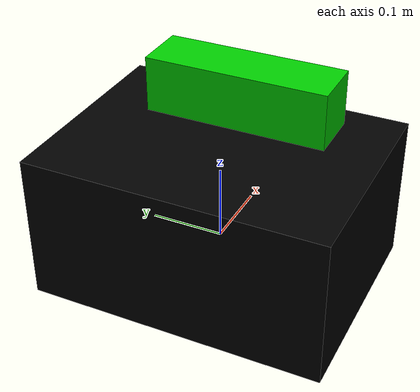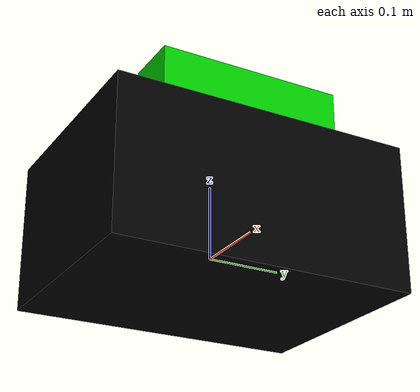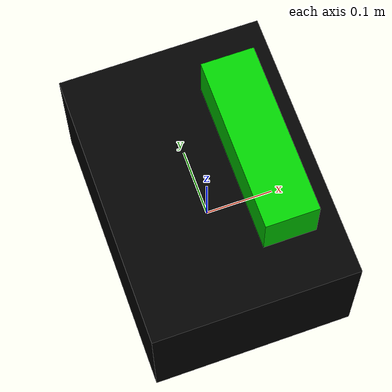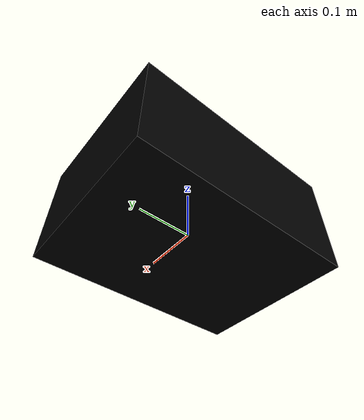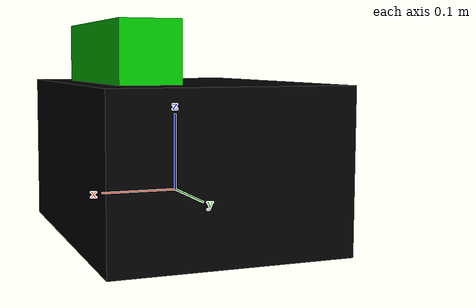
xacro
<?xml version="1.0"?>

<robot name="yakizbot" xmlns:xacro="http://www.ros.org/wiki/xacro">

  <!-- ================= PARAMETERS ================= -->
  <xacro:property name="base_length" value="0.295"/>
  <xacro:property name="base_width" value="0.40"/>
  <xacro:property name="base_height" value="0.20"/>

  <xacro:property name="wheel_radius" value="0.0425"/>
  <xacro:property name="wheel_width" value="0.038"/>

  <xacro:property name="track" value="0.28"/>
  <xacro:property name="wheelbase" value="0.15"/>

  <!-- Kinect 1 real dimensions: 9.8in wide x 3in tall x 3in deep -->
  <xacro:property name="kinect_w" value="0.249"/>  <!-- 9.8 in → m -->
  <xacro:property name="kinect_h" value="0.076"/>  <!-- 3.0 in → m -->
  <xacro:property name="kinect_d" value="0.076"/>  <!-- 3.0 in → m -->

  <!-- ================= MATERIALS ================= -->
  <material name="black"><color rgba="0 0 0 1"/></material>
  <material name="blue"><color rgba="0 0 1 1"/></material>
  <material name="green"><color rgba="0 0.8 0 1"/></material>
  <material name="silver"><color rgba="0.79 0.82 0.93 1"/></material>

  <!-- ================= BASE ================= -->
  <link name="base_footprint"/>

  <link name="base_link">
    <visual>
      <geometry>
        <box size="${base_length} ${base_width} ${base_height}"/>
      </geometry>
      <material name="black"/>
    </visual>

    <collision>
      <geometry>
        <box size="${base_length} ${base_width} ${base_height}"/>
      </geometry>
    </collision>
  </link>

  <joint name="base_joint" type="fixed">
    <parent link="base_footprint"/>
    <child link="base_link"/>
    <origin xyz="0 0 ${wheel_radius}" rpy="0 0 0"/>
  </joint>

  <!-- ================= WHEELS ================= -->
  <xacro:macro name="wheel" params="name x_sign y_sign">
    <link name="${name}_wheel"/>
    <joint name="${name}_wheel_joint" type="continuous">
      <parent link="base_link"/>
      <child link="${name}_wheel"/>
      <origin xyz="${x_sign * wheelbase/2} ${y_sign * track/2} ${-base_height/2}" rpy="0 0 0"/>
      <axis xyz="0 1 0"/>
    </joint>
  </xacro:macro>

  <xacro:wheel name="fl" x_sign="1" y_sign="1"/>
  <xacro:wheel name="rl" x_sign="-1" y_sign="1"/>
  <xacro:wheel name="fr" x_sign="1" y_sign="-1"/>
  <xacro:wheel name="rr" x_sign="-1" y_sign="-1"/>

  <!-- ================= IMU ================= -->
  <link name="imu_link"/>
  <joint name="imu_joint" type="fixed">
    <parent link="base_link"/>
    <child link="imu_link"/>
    <origin xyz="0 0 ${base_height/2}" rpy="0 0 0"/>
  </joint>

  <!-- ================= KINECT (XBOX 360) ================= -->
  <!--  Mounted centered (Y=0) between FL & FR wheels,       -->
  <!--  sitting on top of the base_link.                     -->
  <!--  X=0  →  centred front-to-back                        -->
  <!--  Z = base_height/2 + kinect_h/2  →  rests on top      -->

  <!-- Physical camera body -->
  <link name="kinect_link">
    <visual>
      <geometry>
        <box size="${kinect_d} ${kinect_w} ${kinect_h}"/>
        <!-- x=depth, y=width, z=height so the bar lies across the robot -->
      </geometry>
      <material name="green"/>
    </visual>
    <collision>
      <geometry>
        <box size="${kinect_d} ${kinect_w} ${kinect_h}"/>
      </geometry>
    </collision>
  </link>

  <!-- Mount: centered between FL & FR, sitting on top of base -->
  <joint name="kinect_joint" type="fixed">
    <parent link="base_link"/>
    <child link="kinect_link"/>
    <origin xyz="${base_length/4} 0 ${base_height/2 + kinect_h/2}" rpy="0 0 0"/>
  </joint>

  <!-- Sensor origin (depth sensor centre) -->
  <!-- Kinect 1 depth sensor is slightly left of centre (~2 cm).      -->
  <!-- Kept at (0,0,0) relative to kinect_link for simplicity;        -->
  <!-- adjust x/y if you need sub-centimetre accuracy.                -->

  <link name="kinect_depth"/>
  <joint name="kinect_depth_joint" type="fixed">
    <parent link="kinect_link"/>
    <child link="kinect_depth"/>
    <origin xyz="0 0 0" rpy="0 0 0"/>
  </joint>

  <!-- Optical frame (ROS convention)  -->
  <!--  Standard ROS camera optical frame:                             -->
  <!--    Z  points forward  (into the scene)                         -->
  <!--    Y  points downward                                           -->
  <!--    X  points right                                              -->
  <!--  Achieved by rpy = (-π/2, 0, -π/2) from the URDF body frame.  -->

  <link name="kinect_depth_optical_frame"/>
  <joint name="kinect_depth_optical_joint" type="fixed">
    <parent link="kinect_depth"/>
    <child link="kinect_depth_optical_frame"/>
    <origin xyz="0 0 0" rpy="${-pi/2} 0 ${-pi/2}"/>
  </joint>

</robot>
